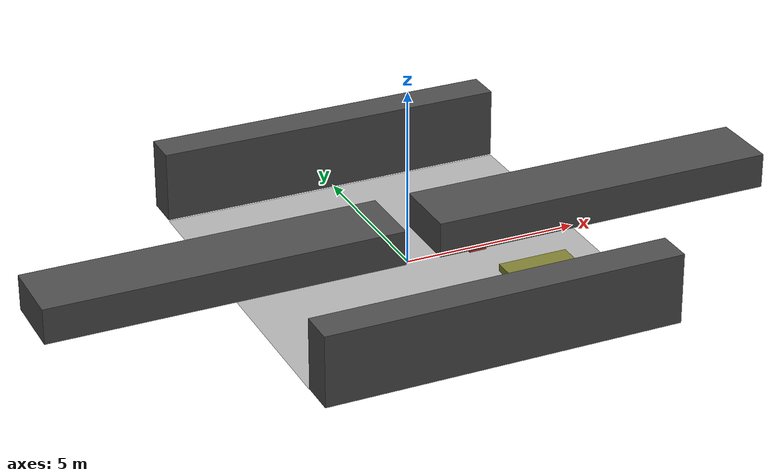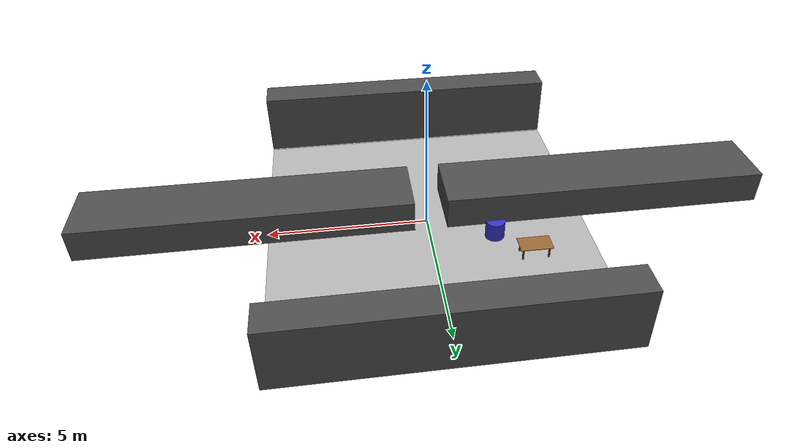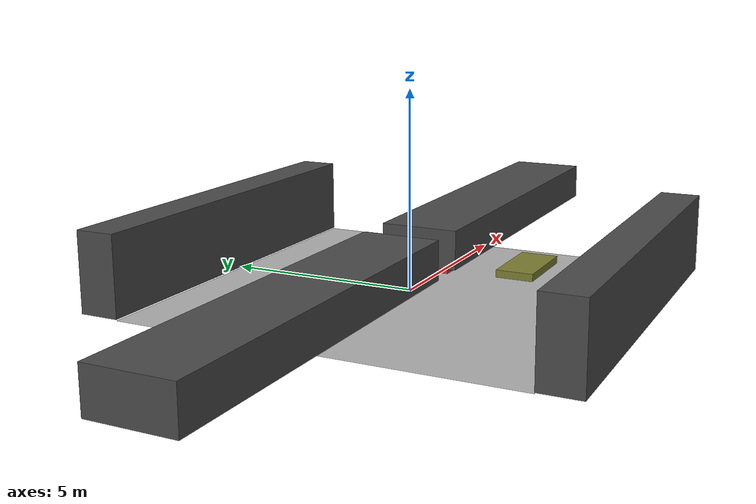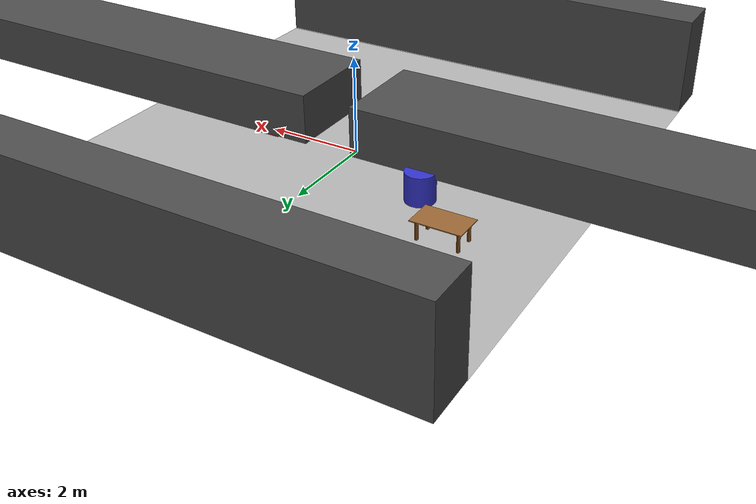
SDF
<?xml version="1.0" ?>
<sdf version="1.7">
  <world name="humanoid_lab">
    <!-- Physics configuration -->
    <physics type="ode">
      <gravity>0 0 -9.8</gravity>
      <max_step_size>0.001</max_step_size>
      <real_time_factor>1</real_time_factor>
      <real_time_update_rate>1000</real_time_update_rate>
      <ode>
        <solver>
          <type>quick</type>
          <iters>10</iters>
          <sor>1.3</sor>
        </solver>
        <constraints>
          <cfm>0.000001</cfm>
          <erp>0.2</erp>
          <contact_max_correcting_vel>100</contact_max_correcting_vel>
          <contact_surface_layer>0.001</contact_surface_layer>
        </constraints>
      </ode>
    </physics>

    <!-- Ground plane -->
    <include>
      <uri>model://ground_plane</uri>
    </include>

    <!-- Lighting -->
    <include>
      <uri>model://sun</uri>
    </include>

    <!-- Humanoid-friendly environment elements -->

    <!-- Main floor with appropriate friction for humanoid walking -->
    <model name="floor">
      <static>true</static>
      <link name="floor_link">
        <collision name="floor_collision">
          <geometry>
            <plane>
              <normal>0 0 1</normal>
              <size>10 10</size>
            </plane>
          </geometry>
          <surface>
            <friction>
              <ode>
                <mu>1.0</mu>
                <mu2>1.0</mu2>
              </ode>
            </friction>
          </surface>
        </collision>
        <visual name="floor_visual">
          <geometry>
            <plane>
              <normal>0 0 1</normal>
              <size>10 10</size>
            </plane>
          </geometry>
          <material>
            <ambient>0.7 0.7 0.7 1</ambient>
            <diffuse>0.7 0.7 0.7 1</diffuse>
            <specular>0.0 0.0 0.0 1</specular>
          </material>
        </visual>
      </link>
    </model>

    <!-- Simple obstacles for navigation testing -->
    <model name="obstacle_1">
      <pose>2 0 0.5 0 0 0</pose>
      <link name="obstacle_link">
        <collision name="obstacle_collision">
          <geometry>
            <box>
              <size>0.5 0.5 1.0</size>
            </box>
          </geometry>
        </collision>
        <visual name="obstacle_visual">
          <geometry>
            <box>
              <size>0.5 0.5 1.0</size>
            </box>
          </geometry>
          <material>
            <ambient>0.8 0.2 0.2 1</ambient>
            <diffuse>0.8 0.2 0.2 1</diffuse>
          </material>
        </visual>
      </link>
    </model>

    <model name="obstacle_2">
      <pose>-2 1 0.3 0 0 0</pose>
      <link name="obstacle_link">
        <collision name="obstacle_collision">
          <geometry>
            <cylinder>
              <radius>0.3</radius>
              <length>0.6</length>
            </cylinder>
          </geometry>
        </collision>
        <visual name="obstacle_visual">
          <geometry>
            <cylinder>
              <radius>0.3</radius>
              <length>0.6</length>
            </cylinder>
          </geometry>
          <material>
            <ambient>0.2 0.2 0.8 1</ambient>
            <diffuse>0.2 0.2 0.8 1</diffuse>
          </material>
        </visual>
      </link>
    </model>

    <!-- Platform for humanoid to step onto (testing locomotion) -->
    <model name="platform">
      <pose>3 -2 0.1 0 0 0</pose>
      <link name="platform_link">
        <collision name="platform_collision">
          <geometry>
            <box>
              <size>2.0 1.0 0.2</size>
            </box>
          </geometry>
          <surface>
            <friction>
              <ode>
                <mu>0.8</mu>
                <mu2>0.8</mu2>
              </ode>
            </friction>
          </surface>
        </collision>
        <visual name="platform_visual">
          <geometry>
            <box>
              <size>2.0 1.0 0.2</size>
            </box>
          </geometry>
          <material>
            <ambient>0.5 0.5 0.2 1</ambient>
            <diffuse>0.5 0.5 0.2 1</diffuse>
          </material>
        </visual>
      </link>
    </model>

    <!-- Simple table for manipulation tasks -->
    <model name="table">
      <pose>-3 2 0 0 0 0</pose>
      <link name="table_top">
        <pose>0 0 0.4 0 0 0</pose>
        <collision name="table_top_collision">
          <geometry>
            <box>
              <size>1.0 0.6 0.02</size>
            </box>
          </geometry>
        </collision>
        <visual name="table_top_visual">
          <geometry>
            <box>
              <size>1.0 0.6 0.02</size>
            </box>
          </geometry>
          <material>
            <ambient>0.6 0.4 0.2 1</ambient>
            <diffuse>0.6 0.4 0.2 1</diffuse>
          </material>
        </visual>
      </link>
      <link name="table_leg_1">
        <pose>-0.4 -0.2 0.2 0 0 0</pose>
        <collision name="table_leg_1_collision">
          <geometry>
            <box>
              <size>0.05 0.05 0.4</size>
            </box>
          </geometry>
        </collision>
        <visual name="table_leg_1_visual">
          <geometry>
            <box>
              <size>0.05 0.05 0.4</size>
            </box>
          </geometry>
          <material>
            <ambient>0.4 0.2 0 1</ambient>
            <diffuse>0.4 0.2 0 1</diffuse>
          </material>
        </visual>
      </link>
      <link name="table_leg_2">
        <pose>0.4 -0.2 0.2 0 0 0</pose>
        <collision name="table_leg_2_collision">
          <geometry>
            <box>
              <size>0.05 0.05 0.4</size>
            </box>
          </geometry>
        </collision>
        <visual name="table_leg_2_visual">
          <geometry>
            <box>
              <size>0.05 0.05 0.4</size>
            </box>
          </geometry>
          <material>
            <ambient>0.4 0.2 0 1</ambient>
            <diffuse>0.4 0.2 0 1</diffuse>
          </material>
        </visual>
      </link>
      <link name="table_leg_3">
        <pose>-0.4 0.2 0.2 0 0 0</pose>
        <collision name="table_leg_3_collision">
          <geometry>
            <box>
              <size>0.05 0.05 0.4</size>
            </box>
          </geometry>
        </collision>
        <visual name="table_leg_3_visual">
          <geometry>
            <box>
              <size>0.05 0.05 0.4</size>
            </box>
          </geometry>
          <material>
            <ambient>0.4 0.2 0 1</ambient>
            <diffuse>0.4 0.2 0 1</diffuse>
          </material>
        </visual>
      </link>
      <link name="table_leg_4">
        <pose>0.4 0.2 0.2 0 0 0</pose>
        <collision name="table_leg_4_collision">
          <geometry>
            <box>
              <size>0.05 0.05 0.4</size>
            </box>
          </geometry>
        </collision>
        <visual name="table_leg_4_visual">
          <geometry>
            <box>
              <size>0.05 0.05 0.4</size>
            </box>
          </geometry>
          <material>
            <ambient>0.4 0.2 0 1</ambient>
            <diffuse>0.4 0.2 0 1</diffuse>
          </material>
        </visual>
      </link>
      <joint name="table_joint_1" type="fixed">
        <parent>table_top</parent>
        <child>table_leg_1</child>
      </joint>
      <joint name="table_joint_2" type="fixed">
        <parent>table_top</parent>
        <child>table_leg_2</child>
      </joint>
      <joint name="table_joint_3" type="fixed">
        <parent>table_top</parent>
        <child>table_leg_3</child>
      </joint>
      <joint name="table_joint_4" type="fixed">
        <parent>table_top</parent>
        <child>table_leg_4</child>
      </joint>
    </model>

    <!-- Boundary walls to keep humanoid within safe area -->
    <model name="boundary_wall_1">
      <pose>0 -5.5 1 0 0 0</pose>
      <static>true</static>
      <link name="wall_link">
        <collision name="wall_collision">
          <geometry>
            <box>
              <size>10 1 2</size>
            </box>
          </geometry>
        </collision>
        <visual name="wall_visual">
          <geometry>
            <box>
              <size>10 1 2</size>
            </box>
          </geometry>
          <material>
            <ambient>0.3 0.3 0.3 1</ambient>
            <diffuse>0.3 0.3 0.3 1</diffuse>
          </material>
        </visual>
      </link>
    </model>

    <model name="boundary_wall_2">
      <pose>0 5.5 1 0 0 0</pose>
      <static>true</static>
      <link name="wall_link">
        <collision name="wall_collision">
          <geometry>
            <box>
              <size>10 1 2</size>
            </box>
          </geometry>
        </collision>
        <visual name="wall_visual">
          <geometry>
            <box>
              <size>10 1 2</size>
            </box>
          </geometry>
          <material>
            <ambient>0.3 0.3 0.3 1</ambient>
            <diffuse>0.3 0.3 0.3 1</diffuse>
          </material>
        </visual>
      </link>
    </model>

    <model name="boundary_wall_3">
      <pose>-5.5 0 1 1.570796 0 0</pose>
      <static>true</static>
      <link name="wall_link">
        <collision name="wall_collision">
          <geometry>
            <box>
              <size>10 1 2</size>
            </box>
          </geometry>
        </collision>
        <visual name="wall_visual">
          <geometry>
            <box>
              <size>10 1 2</size>
            </box>
          </geometry>
          <material>
            <ambient>0.3 0.3 0.3 1</ambient>
            <diffuse>0.3 0.3 0.3 1</diffuse>
          </material>
        </visual>
      </link>
    </model>

    <model name="boundary_wall_4">
      <pose>5.5 0 1 1.570796 0 0</pose>
      <static>true</static>
      <link name="wall_link">
        <collision name="wall_collision">
          <geometry>
            <box>
              <size>10 1 2</size>
            </box>
          </geometry>
        </collision>
        <visual name="wall_visual">
          <geometry>
            <box>
              <size>10 1 2</size>
            </box>
          </geometry>
          <material>
            <ambient>0.3 0.3 0.3 1</ambient>
            <diffuse>0.3 0.3 0.3 1</diffuse>
          </material>
        </visual>
      </link>
    </model>
  </world>
</sdf>
